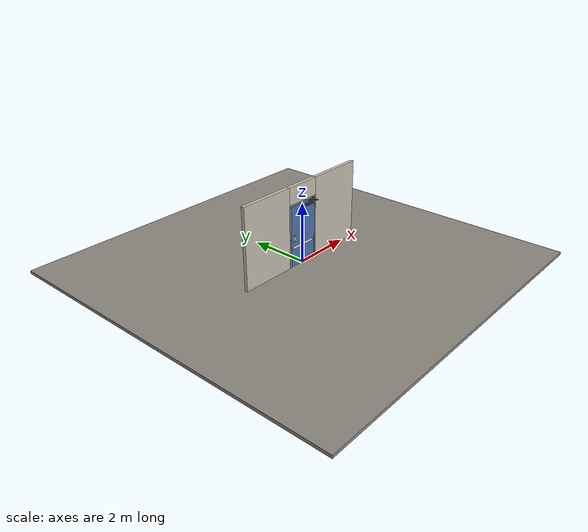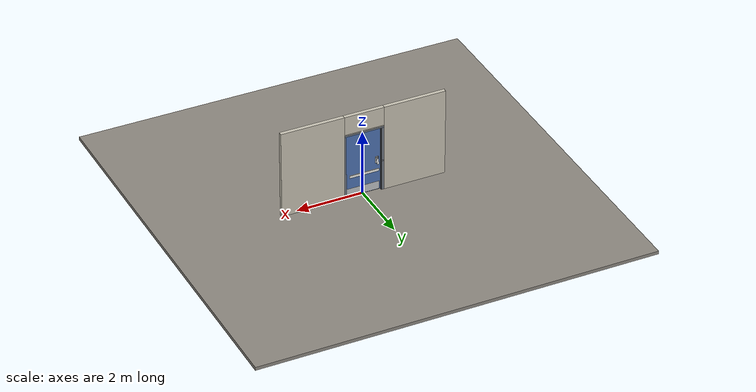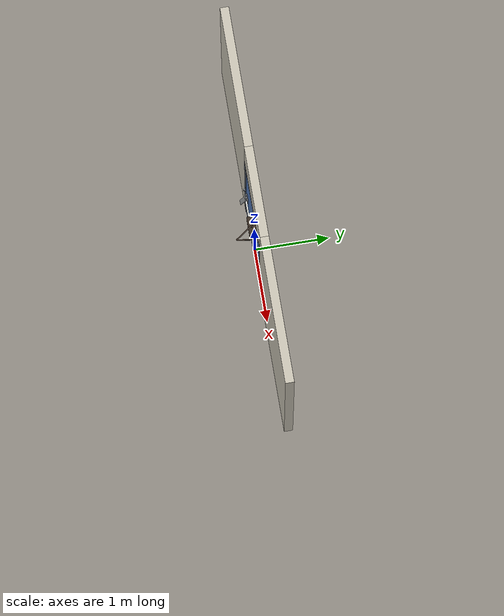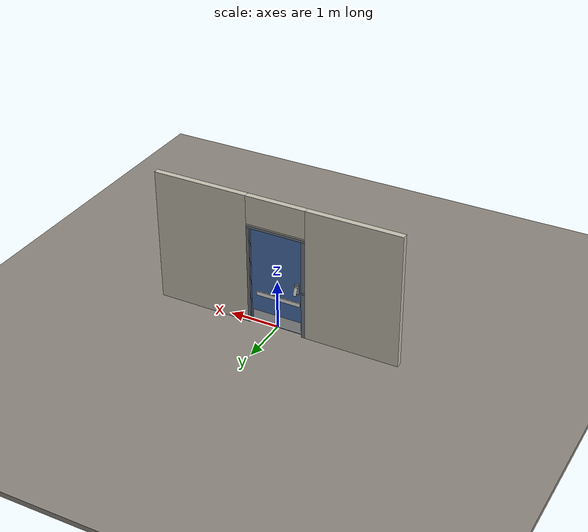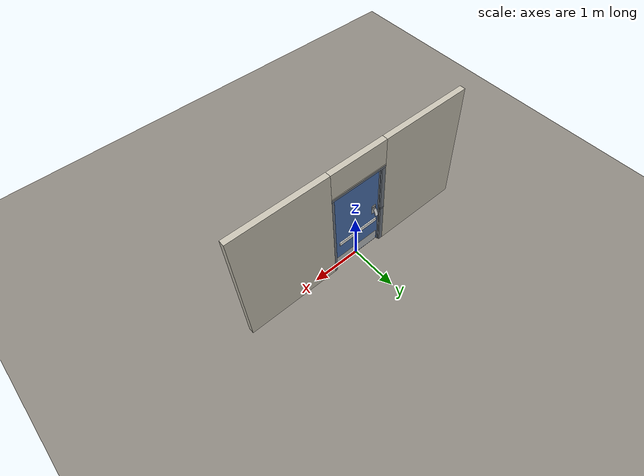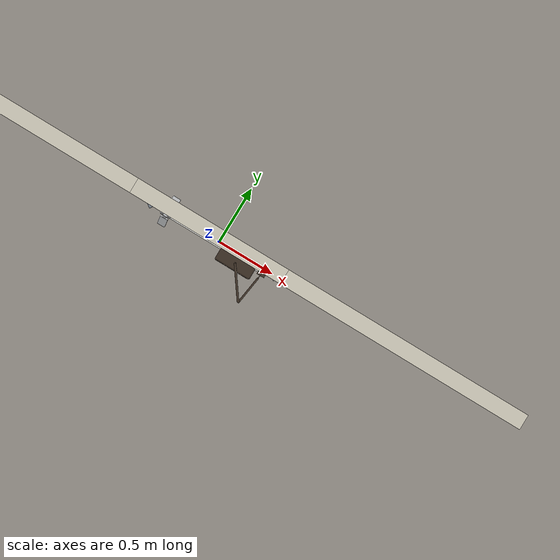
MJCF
<?xml version="1.0" ?>
<mujoco model="db0973_swing_single_full">
  <compiler angle="radian" meshdir="../../hardware" texturedir="../../textures" autolimits="true" inertiafromgeom="false"/>
  <option timestep="0.002" integrator="implicitfast" cone="elliptic" impratio="10" noslip_iterations="3">
    <flag multiccd="enable"/>
  </option>
  <size memory="16M"/>
  <default>
    <geom condim="4" solref="0.005 1" solimp="0.95 0.99 0.001"/>
    <joint solreflimit="0.005 1" solimplimit="0.95 0.99 0.001"/>
    <tendon solreflimit="0.005 1"/>
    <equality solref="0.002 1"/>
  </default>
  <visual>
    <headlight ambient="0.4 0.4 0.4" diffuse="0.7 0.7 0.7" specular="0.2 0.2 0.2"/>
    <quality shadowsize="4096"/>
    <map znear="0.01" zfar="60"/>
  </visual>
  <asset>
    <mesh name="closer_body_fdc4667657" file="closer_body_fdc4667657.obj"/>
    <mesh name="hinge_e22b26c0c1" file="hinge_e22b26c0c1.obj"/>
    <mesh name="hinge_jamb_e1d088f8dc" file="hinge_jamb_e1d088f8dc.obj"/>
    <material name="mat_floor" rgba="0.55 0.53 0.5 1" specular="0.2" shininess="0.15" reflectance="0"/>
    <material name="mat_wall" rgba="0.78 0.76 0.7 1" specular="0.2" shininess="0.1" reflectance="0"/>
    <material name="mat_leaf" rgba="0.3 0.45 0.7 1" specular="0.2" shininess="0.61" reflectance="0"/>
    <material name="mat_hinge" rgba="0.65 0.66 0.68 1" specular="0.74" shininess="0.5" reflectance="0.36"/>
    <material name="mat_op_stainless" rgba="0.75 0.76 0.77 1" specular="0.8" shininess="0.65" reflectance="0.4"/>
    <material name="mat_bolt" rgba="0.75 0.76 0.77 1" specular="0.8" shininess="0.65" reflectance="0.4"/>
    <material name="mat_frame" rgba="0.45 0.48 0.52 1" specular="0.32" shininess="0.6" reflectance="0.08"/>
    <material name="mat_closer" rgba="0.22 0.17 0.13 1" specular="0.8" shininess="0.6" reflectance="0.4"/>
    <material name="mat_kick" rgba="0.75 0.76 0.77 1" specular="0.8" shininess="0.65" reflectance="0.4"/>
    <material name="mat_bumper" rgba="0.92 0.92 0.9 1" specular="0.2" shininess="0.6" reflectance="0"/>
    <texture name="skybox" type="skybox" builtin="gradient" rgb1="0.6 0.7 0.85" rgb2="0.9 0.92 0.95" width="256" height="256"/>
  </asset>
  <worldbody>
    <light name="sun" pos="1.5 -2.5 4" dir="-0.3 0.5 -0.8" directional="true" diffuse="0.8 0.8 0.8" specular="0.3 0.3 0.3" castshadow="true"/>
    <light name="fill" pos="-1.5 2.5 3" dir="0.3 -0.5 -0.7" directional="true" diffuse="0.35 0.35 0.4" castshadow="false"/>
    <camera name="robot_view" pos="0 -2.513687 1.734312" xyaxes="1 0 0 0 0.26963 0.962964" fovy="52"/>
    <camera name="far_view" pos="0 2.570688 1.734312" xyaxes="-1 0 0 0 -0.26963 0.962964" fovy="52"/>
    <camera name="iso" pos="-1.932062 -2.106937 2.141063" xyaxes="0.741536 -0.670913 0 0.242917 0.268487 0.932151" fovy="46"/>
    <camera name="detail_handle" pos="-0.241 -0.881204 1.242663" xyaxes="0.97561 0.219512 0 -0.070934 0.315262 0.94635" fovy="38"/>
    <geom name="floor" type="box" size="6 6 0.05" pos="0 0 -0.05" material="mat_floor" group="0" contype="1" conaffinity="1" friction="0.8 0.005 0.0001" density="2400"/>
    <geom name="wall_left" type="box" size="0.9415 0.0575 1.35" pos="-1.5585 0.0285 1.35" material="mat_wall" group="0" contype="1" conaffinity="1" friction="0.6 0.005 0.0001" density="800"/>
    <geom name="wall_right" type="box" size="0.9565 0.0575 1.35" pos="1.5435 0.0285 1.35" material="mat_wall" group="0" contype="1" conaffinity="1" friction="0.6 0.005 0.0001" density="800"/>
    <geom name="wall_header" type="box" size="0.602 0.0575 0.2875" pos="-0.015 0.0285 2.4125" material="mat_wall" group="0" contype="1" conaffinity="1" friction="0.6 0.005 0.0001" density="800"/>
    <geom name="hinge_0_jamb" type="mesh" mesh="hinge_jamb_e1d088f8dc" pos="0.534 -0.029 0.259" quat="0 0 1 0" material="mat_hinge" group="1" contype="0" conaffinity="0" density="7850"/>
    <geom name="hinge_1_jamb" type="mesh" mesh="hinge_jamb_e1d088f8dc" pos="0.534 -0.029 1.025" quat="0 0 1 0" material="mat_hinge" group="1" contype="0" conaffinity="0" density="7850"/>
    <geom name="hinge_2_jamb" type="mesh" mesh="hinge_jamb_e1d088f8dc" pos="0.534 -0.029 1.861" quat="0 0 1 0" material="mat_hinge" group="1" contype="0" conaffinity="0" density="7850"/>
    <geom name="jamb_hinge" type="box" size="0.025 0.0575 1.0225" pos="0.562 0.0285 1.0225" material="mat_frame" group="0" contype="1" conaffinity="1" friction="0.6 0.005 0.0001" density="300"/>
    <geom name="strike_965_wall_n" type="box" size="0.04 0.03825 0.018" pos="-0.577 0.04775 0.965" material="mat_frame" group="0" contype="1" conaffinity="1" friction="0.6 0.005 0.0001" density="300"/>
    <geom name="strike_965_wall_p" type="box" size="0.04 0.008 0.018" pos="-0.577 -0.0175 0.965" material="mat_frame" group="0" contype="1" conaffinity="1" friction="0.6 0.005 0.0001" density="300"/>
    <geom name="strike_965_ramp" type="box" size="0.04 0.018028 0.018" pos="-0.580282 -0.018312 0.965" quat="0.957092 0 0 -0.289784" material="mat_frame" group="0" contype="1" conaffinity="1" friction="0.12 0.005 0.0001" density="300"/>
    <geom name="strike_965_back" type="box" size="0.0285 0.0095 0.018" pos="-0.5885 0 0.965" material="mat_frame" group="0" contype="1" conaffinity="1" friction="0.6 0.005 0.0001" density="300"/>
    <geom name="jamb_strike_0" type="box" size="0.04 0.0575 0.4735" pos="-0.577 0.0285 0.4735" material="mat_frame" group="0" contype="1" conaffinity="1" friction="0.6 0.005 0.0001" density="300"/>
    <geom name="jamb_strike_1" type="box" size="0.04 0.0575 0.531" pos="-0.577 0.0285 1.514" material="mat_frame" group="0" contype="1" conaffinity="1" friction="0.6 0.005 0.0001" density="300"/>
    <geom name="jamb_head" type="box" size="0.602 0.0575 0.025" pos="-0.015 0.0285 2.07" material="mat_frame" group="0" contype="1" conaffinity="1" friction="0.6 0.005 0.0001" density="300"/>
    <geom name="head_stud" type="box" size="0.602 0.0575 0.015" pos="-0.015 0.0285 2.11" material="mat_wall" group="0" contype="1" conaffinity="1" friction="0.6 0.005 0.0001" density="500"/>
    <geom name="stop_hinge" type="box" size="0.0055 0.016 1.0225" pos="0.5315 0.0385 1.0225" material="mat_frame" group="0" contype="1" conaffinity="1" friction="0.6 0.005 0.0001" density="300"/>
    <geom name="stop_strike" type="box" size="0.0055 0.016 1.0225" pos="-0.5315 0.0385 1.0225" material="mat_frame" group="0" contype="1" conaffinity="1" friction="0.6 0.005 0.0001" density="300"/>
    <geom name="stop_head" type="box" size="0.537 0.016 0.0055" pos="0 0.0385 2.0395" material="mat_frame" group="0" contype="1" conaffinity="1" friction="0.6 0.005 0.0001" density="300"/>
    <geom name="closer_bracket" type="box" size="0.03 0.012 0.014" pos="0.437 -0.041 2.075" material="mat_closer" group="1" contype="0" conaffinity="0" density="2700"/>
    <site name="approach_point" pos="0 -1.5 0" quat="1 0 0 0" size="0.05" rgba="0.2 0.9 0.2 0.5" group="4"/>
    <site name="goal_point" pos="0 1.5 0" quat="1 0 0 0" size="0.05" rgba="0.2 0.9 0.2 0.5" group="4"/>
    <site name="door_plane_center" pos="0 0 1.0225" quat="1 0 0 0" size="0.02" rgba="0.2 0.9 0.2 0.5" group="4"/>
    <body name="leaf" pos="0.537 0 0">
      <inertial pos="-0.500495 -0.010578 1.126425" mass="80.653396" quat="0.465809 0.486203 0.524277 -0.521308" diaginertia="7.042925222 34.106744842 41.029618"/>
      <joint name="leaf_hinge" type="hinge" axis="0 0 1" pos="-0.003 -0.029 0" limited="true" range="0 1.570796" damping="12.475663" frictionloss="0.360317" stiffness="15.70541" springref="-2.921286" armature="0.02"/>
      <geom name="leaf_slab" type="box" size="0.5335 0.022 1.016" pos="-0.5365 0 1.025" material="mat_leaf" group="0" contype="1" conaffinity="1" friction="0.35 0.005 0.0001" density="1"/>
      <geom name="hinge_0" type="mesh" mesh="hinge_e22b26c0c1" pos="-0.003 -0.029 0.259" quat="0 0 1 0" material="mat_hinge" group="1" contype="0" conaffinity="0" density="7850"/>
      <geom name="hinge_1" type="mesh" mesh="hinge_e22b26c0c1" pos="-0.003 -0.029 1.025" quat="0 0 1 0" material="mat_hinge" group="1" contype="0" conaffinity="0" density="7850"/>
      <geom name="hinge_2" type="mesh" mesh="hinge_e22b26c0c1" pos="-0.003 -0.029 1.861" quat="0 0 1 0" material="mat_hinge" group="1" contype="0" conaffinity="0" density="7850"/>
      <geom name="leaf_handle_paddle_backplate_n" type="box" size="0.044 0.003 0.11" pos="-0.958 -0.025 0.998527" material="mat_op_stainless" group="0" contype="1" conaffinity="1" friction="0.6 0.005 0.0001" density="3000"/>
      <geom name="leaf_handle_paddle_bearing_n_-1" type="box" size="0.005 0.006 0.009" pos="-0.996 -0.034 1.075527" material="mat_op_stainless" group="0" contype="1" conaffinity="1" friction="0.6 0.005 0.0001" density="3000"/>
      <geom name="leaf_handle_paddle_bearing_n_1" type="box" size="0.005 0.006 0.009" pos="-0.92 -0.034 1.075527" material="mat_op_stainless" group="0" contype="1" conaffinity="1" friction="0.6 0.005 0.0001" density="3000"/>
      <geom name="leaf_handle_paddle_pin_n" type="cylinder" size="0.004 0.043" pos="-0.958 -0.04 1.075527" quat="0.707107 0 0.707107 0" material="mat_op_stainless" group="1" contype="0" conaffinity="0" density="7850"/>
      <geom name="leaf_handle_paddle_backplate_p" type="box" size="0.044 0.003 0.11" pos="-0.958 0.025 0.998527" material="mat_op_stainless" group="0" contype="1" conaffinity="1" friction="0.6 0.005 0.0001" density="3000"/>
      <geom name="leaf_handle_paddle_bearing_p_-1" type="box" size="0.005 0.006 0.009" pos="-0.996 0.034 1.075527" material="mat_op_stainless" group="0" contype="1" conaffinity="1" friction="0.6 0.005 0.0001" density="3000"/>
      <geom name="leaf_handle_paddle_bearing_p_1" type="box" size="0.005 0.006 0.009" pos="-0.92 0.034 1.075527" material="mat_op_stainless" group="0" contype="1" conaffinity="1" friction="0.6 0.005 0.0001" density="3000"/>
      <geom name="leaf_handle_paddle_pin_p" type="cylinder" size="0.004 0.043" pos="-0.958 0.04 1.075527" quat="0.707107 0 0.707107 0" material="mat_op_stainless" group="1" contype="0" conaffinity="0" density="7850"/>
      <geom name="leaf_latch_bolt_faceplate" type="box" size="0.0006 0.014 0.028" pos="-1.0694 0 0.965" material="mat_bolt" group="1" contype="0" conaffinity="0" density="8500"/>
      <geom name="closer_body" type="mesh" mesh="closer_body_fdc4667657" pos="-0.3 -0.022 1.952" quat="0 0 -0.707107 0.707107" material="mat_closer" group="1" contype="0" conaffinity="0" density="2000"/>
      <geom name="closer_body_col" type="box" size="0.145 0.05 0.035" pos="-0.3 -0.072 1.952" material="mat_closer" group="3" contype="1" conaffinity="1" rgba="0.8 0.3 0.3 0.25" friction="0.6 0.005 0.0001" density="2000"/>
      <geom name="closer_pinion_shaft" type="cylinder" size="0.008 0.0615" pos="-0.3 -0.072 2.0135" material="mat_closer" group="1" contype="0" conaffinity="0" density="2700"/>
      <geom name="kick_plate_p" type="box" size="0.5035 0.0008 0.125" pos="-0.5365 0.0228 0.144" material="mat_kick" group="2" contype="0" conaffinity="0" density="7900"/>
      <geom name="bumper_rail_n" type="box" size="0.4485 0.01 0.04" pos="-0.5715 -0.032 0.659" material="mat_bumper" group="0" contype="1" conaffinity="1" friction="0.6 0.005 0.0001" density="1200"/>
      <geom name="bumper_rail_p" type="box" size="0.4485 0.01 0.04" pos="-0.5715 0.032 0.659" material="mat_bumper" group="0" contype="1" conaffinity="1" friction="0.6 0.005 0.0001" density="1200"/>
      <site name="leaf_edge_mid" pos="-1.07 0 1.016" quat="1 0 0 0" size="0.02" rgba="0.2 0.9 0.2 0.5" group="4"/>
      <body name="leaf_handle" pos="-0.958 -0.04 1.075527">
        <inertial pos="0 -0.041612 -0.098421" mass="0.407526" quat="-0.390699 0.589368 0.589368 0.390699" diaginertia="0.000129106 0.001199851 0.001319468"/>
        <joint name="leaf_handle_hinge" type="hinge" axis="-1 0 0" limited="true" range="0 0.4" damping="0.275853" frictionloss="0.06" stiffness="1.2" springref="-1.25" armature="0.01"/>
        <geom name="leaf_handle_paddle_col_n" type="box" size="0.032 0.006 0.077" pos="0 -0.04673 -0.110527" quat="0.980067 -0.198669 0 0" material="mat_op_stainless" group="0" contype="1" conaffinity="1" friction="0.6 0.005 0.0001" density="3000"/>
        <geom name="leaf_handle_paddle_neck_n" type="box" size="0.012 0.004 0.029" pos="0 -0.011293 -0.026711" quat="0.980067 -0.198669 0 0" material="mat_op_stainless" group="0" contype="1" conaffinity="1" friction="0.6 0.005 0.0001" density="3000"/>
        <geom name="leaf_handle_paddle_hub_n" type="cylinder" size="0.008 0.016" pos="0 0 0" quat="0.707107 0 0.707107 0" material="mat_op_stainless" group="1" contype="0" conaffinity="0" density="3000"/>
        <site name="leaf_handle_grip_n" pos="0 -0.041204 -0.112864" quat="0.552531 -0.833492 0 0" size="0.012" rgba="0.2 0.9 0.2 0.5" group="4"/>
      </body>
      <body name="leaf_handle_paddle_follower_p" pos="-0.958 0.04 1.075527">
        <inertial pos="0 0.041612 -0.098421" mass="0.407526" quat="0.589368 -0.390699 -0.390699 -0.589368" diaginertia="0.000129106 0.001199851 0.001319468"/>
        <joint name="leaf_handle_paddle_follower_p_hinge" type="hinge" axis="-1 0 0" limited="true" range="0 0.4" armature="0.002"/>
        <geom name="leaf_handle_paddle_col_p" type="box" size="0.032 0.006 0.077" pos="0 0.04673 -0.110527" quat="0.980067 0.198669 0 0" material="mat_op_stainless" group="0" contype="1" conaffinity="1" friction="0.6 0.005 0.0001" density="3000"/>
        <geom name="leaf_handle_paddle_neck_p" type="box" size="0.012 0.004 0.029" pos="0 0.011293 -0.026711" quat="0.980067 0.198669 0 0" material="mat_op_stainless" group="0" contype="1" conaffinity="1" friction="0.6 0.005 0.0001" density="3000"/>
        <geom name="leaf_handle_paddle_hub_p" type="cylinder" size="0.008 0.016" pos="0 0 0" quat="0.707107 0 0.707107 0" material="mat_op_stainless" group="1" contype="0" conaffinity="0" density="3000"/>
        <site name="leaf_handle_grip_p" pos="0 0.052257 -0.108191" quat="0.833492 -0.552531 0 0" size="0.012" rgba="0.2 0.9 0.2 0.5" group="4"/>
      </body>
      <body name="leaf_latch_bolt" pos="-1.07 0 0.965">
        <inertial pos="0.0055 0 0" mass="0.074627" quat="0.92388 0.382683 0 0" diaginertia="0.000002271 0.000013255 0.000013255"/>
        <joint name="leaf_latch_bolt_slide" type="slide" axis="1 0 0" limited="true" range="0 0.019" damping="2" frictionloss="0.3" stiffness="550" springref="-0.01" armature="0.1"/>
        <geom name="leaf_latch_bolt_capsule" type="capsule" size="0.008 0.0165" pos="0.0055 0 0" quat="0.707107 0 -0.707107 0" material="mat_bolt" group="0" contype="1" conaffinity="1" friction="0.2 0.005 0.0001" density="8500"/>
      </body>
      <body name="closer_arm_main" pos="-0.3 -0.072 2.075" quat="0.890947 0 0 -0.454107">
        <inertial pos="0.14 0 0" mass="0.12096" quat="1 0 0 0" diaginertia="0.000003588 0.00079128 0.000792852"/>
        <joint name="closer_pinion" type="hinge" axis="0 0 1" limited="false" damping="0.01" armature="0.002"/>
        <geom name="closer_arm_main_geom" type="box" size="0.14 0.008 0.005" pos="0.14 0 0" material="mat_closer" group="1" contype="0" conaffinity="0" density="2700"/>
        <body name="closer_arm_fore" pos="0.28 0 0" quat="0.373215 0 0 0.927745">
          <inertial pos="0.128088 0 0" mass="0.076531" quat="1 0 0 0" diaginertia="0.000001771 0.000437665 0.000438201"/>
          <joint name="closer_elbow" type="hinge" axis="0 0 1" limited="false" damping="0.01" armature="0.002"/>
          <geom name="closer_arm_fore_geom" type="box" size="0.1125 0.007 0.004" pos="0.1125 0 0" material="mat_closer" group="1" contype="0" conaffinity="0" density="2700"/>
          <geom name="closer_fore_neck" type="box" size="0.0175 0.003 0.003" pos="0.2425 0 0" material="mat_closer" group="1" contype="0" conaffinity="0" density="2700"/>
          <geom name="closer_fore_pivot" type="cylinder" size="0.005 0.012" pos="0.26 0 0" material="mat_closer" group="1" contype="0" conaffinity="0" density="2700"/>
        </body>
      </body>
    </body>
  </worldbody>
  <tendon>
    <fixed name="leaf_latch_bolt_coupling" limited="true" range="0 10">
      <joint joint="leaf_latch_bolt_slide" coef="1"/>
      <joint joint="leaf_handle_hinge" coef="-0.051351"/>
    </fixed>
  </tendon>
  <equality>
    <joint name="leaf_handle_paddle_cam_p" joint1="leaf_handle_paddle_follower_p_hinge" joint2="leaf_handle_hinge" polycoef="0 1 0 0 0" active="true"/>
    <connect name="closer_arm_connect" body1="closer_arm_fore" body2="world" anchor="0.26 0 0" active="true"/>
  </equality>
  <contact>
    <exclude body1="closer_arm_main" body2="leaf"/>
    <exclude body1="closer_arm_fore" body2="leaf"/>
    <exclude body1="closer_arm_main" body2="closer_arm_fore"/>
  </contact>
  <sensor>
    <jointpos name="leaf_hinge_pos" joint="leaf_hinge"/>
    <jointvel name="leaf_hinge_vel" joint="leaf_hinge"/>
    <jointpos name="leaf_handle_hinge_pos" joint="leaf_handle_hinge"/>
    <jointvel name="leaf_handle_hinge_vel" joint="leaf_handle_hinge"/>
    <jointpos name="leaf_latch_bolt_slide_pos" joint="leaf_latch_bolt_slide"/>
    <jointvel name="leaf_latch_bolt_slide_vel" joint="leaf_latch_bolt_slide"/>
  </sensor>
</mujoco>
